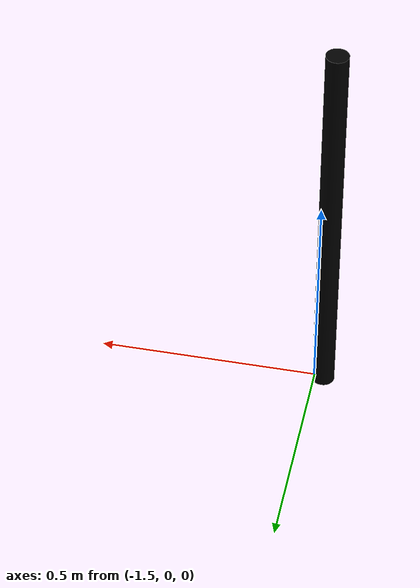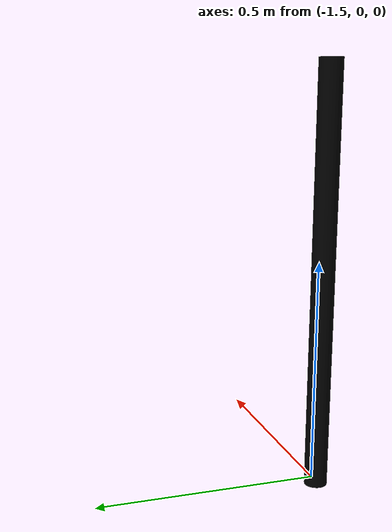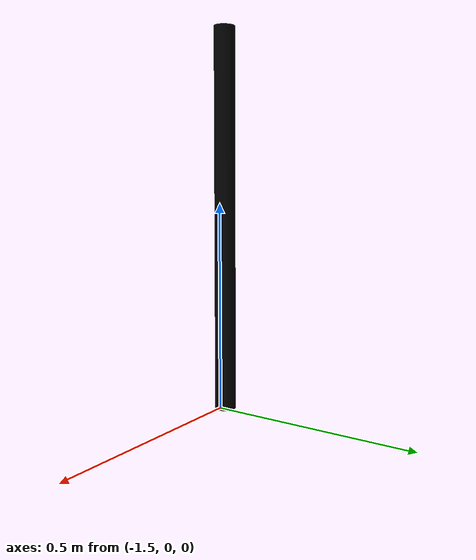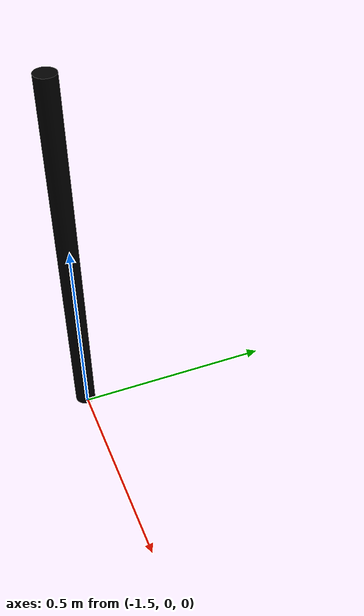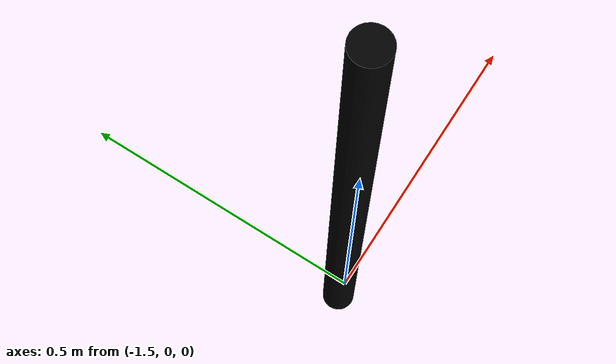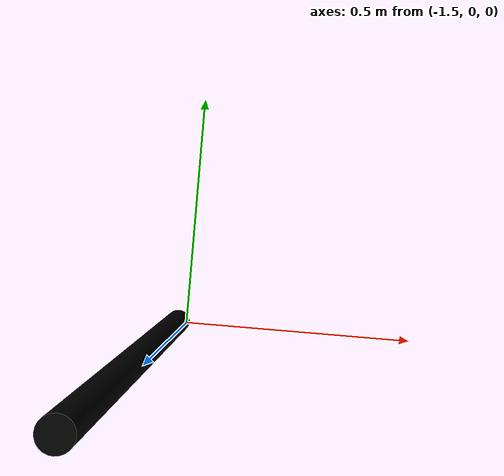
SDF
<?xml version="1.0" encoding="UTF-8"?>

<sdf version="1.10">
    <model name="SlalomRightLabel">
        <cast_shadows>false</cast_shadows>
        <link name="link">
            <visual name="right_slalom_label">
                <pose>-1.52 0 0.46 0 0 0</pose>
                <geometry>
                    <cylinder>
                        <length>0.93</length>
                        <radius>0.0254</radius>
                    </cylinder>
                </geometry>
                <cast_shadows>false</cast_shadows>

                <material>
                    <ambient>0, 0, 0, 0</ambient>
                    <diffuse>0, 0, 0, 0</diffuse>
                    <specular>0, 0, 0, 0</specular>
                </material>
                <plugin filename="gz-sim-label-system" name="gz::sim::systems::Label">
                    <label>5</label>
                </plugin>
            </visual>
        </link>
        <static>true</static>
    </model>
</sdf>
